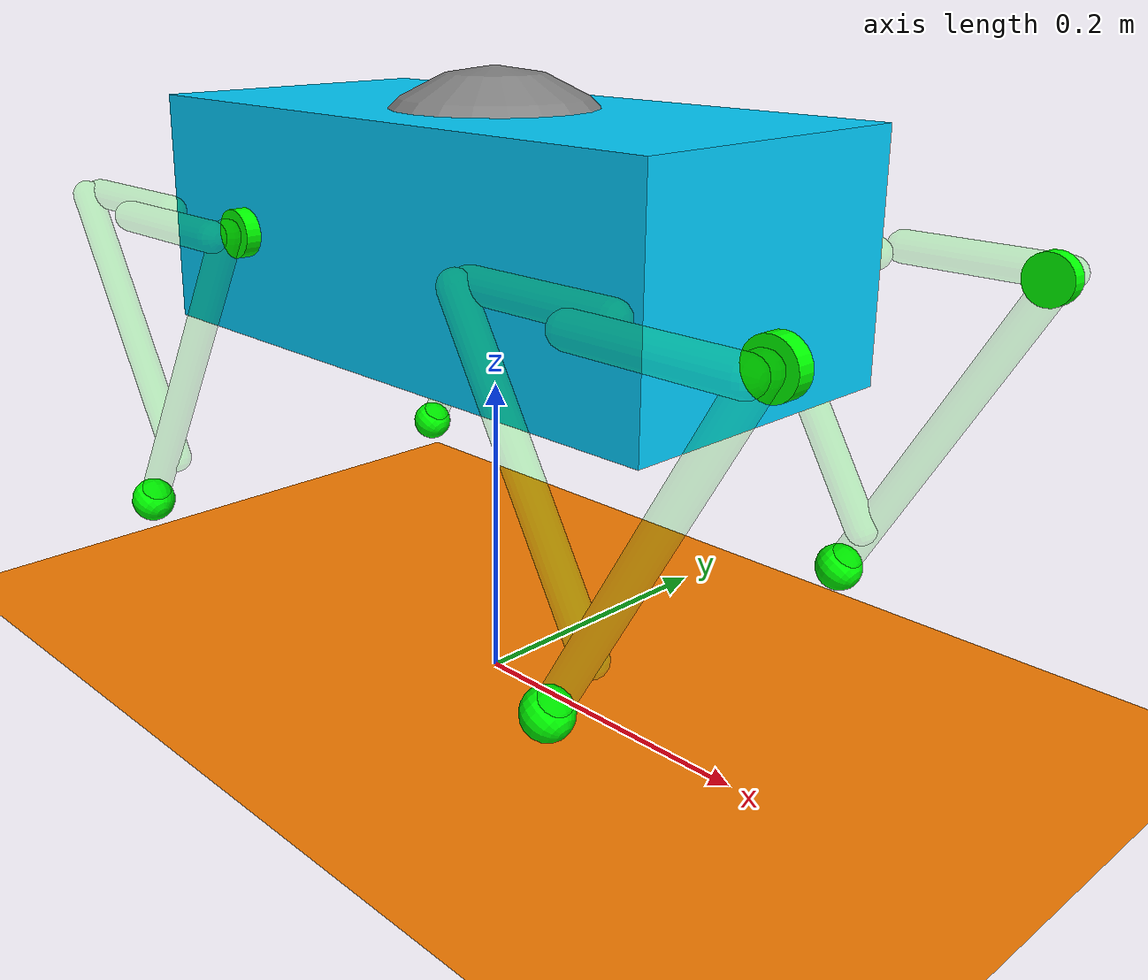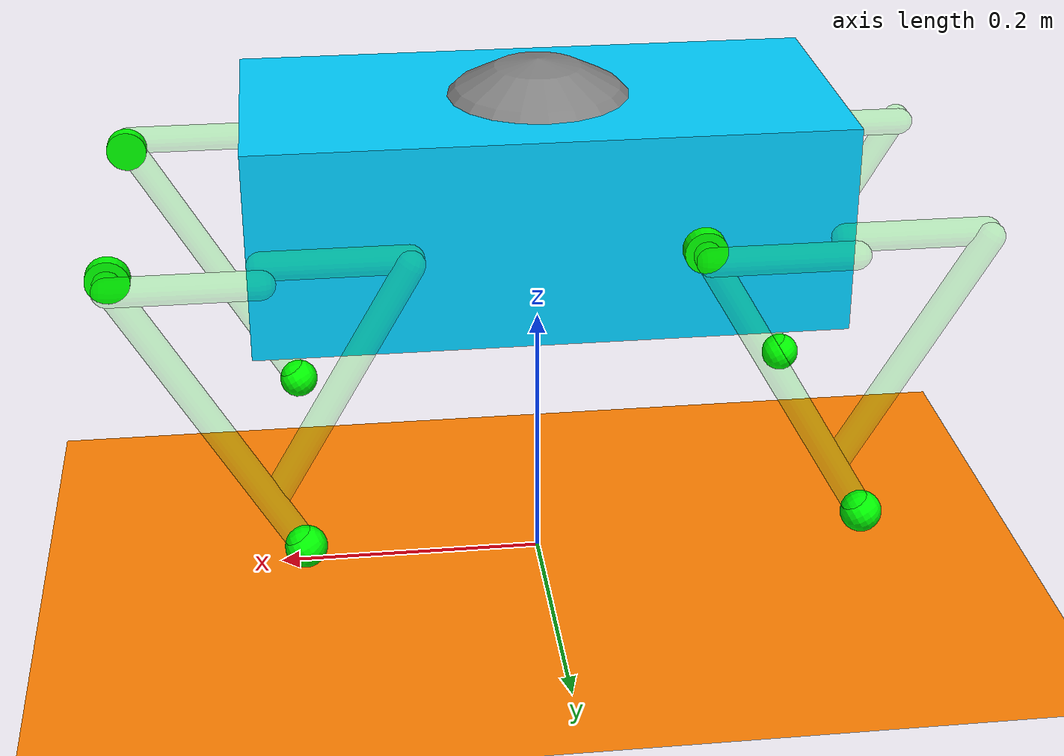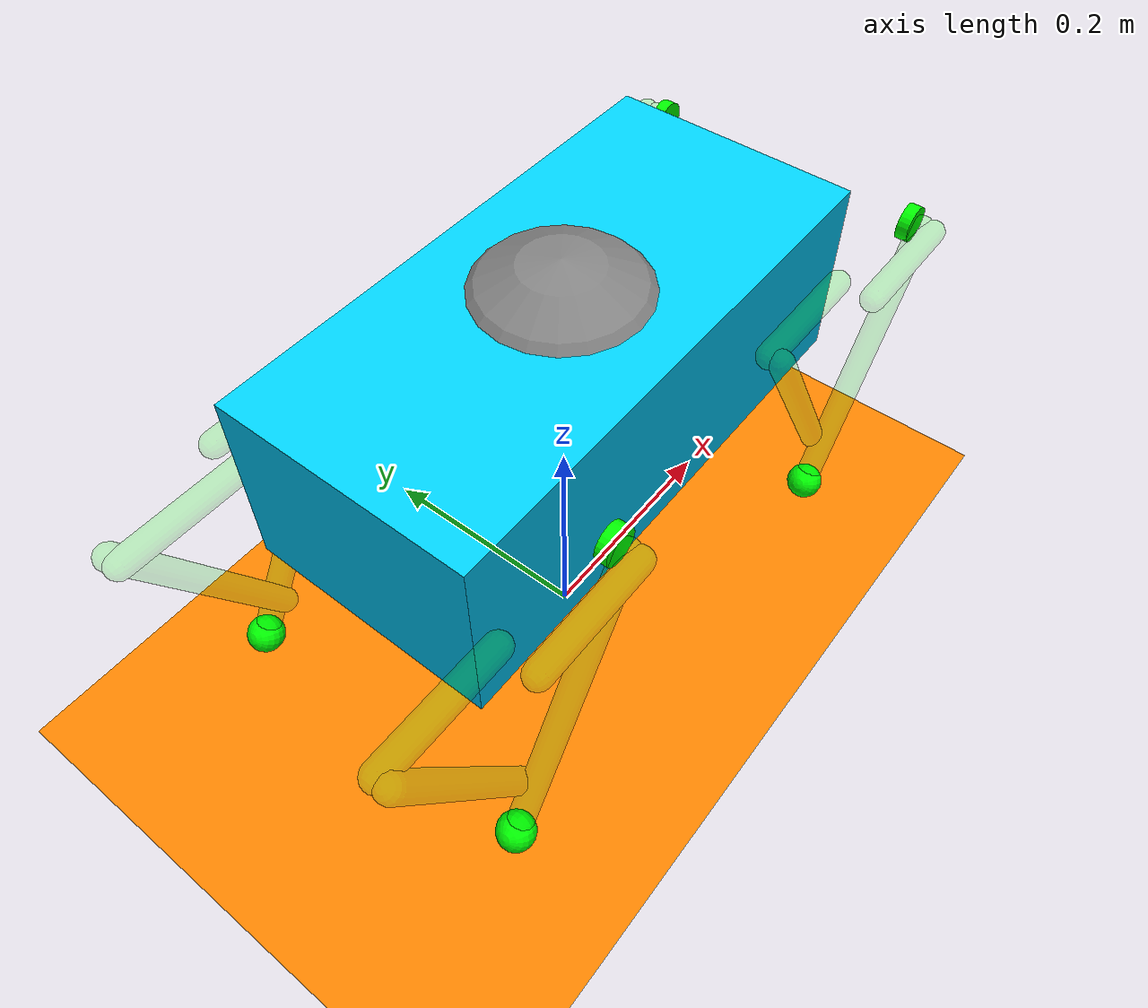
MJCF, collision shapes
<mujoco model='Minitaur'>
  <compiler inertiafromgeom='false' angle='degree' eulerseq='zyx' meshdir='../minitaur-stl'/>
  <size nuser_actuator='1' nuser_sensor='1'/>
  <option timestep='0.0005' iterations='50' solver='PGS' gravity='0 0 -9.806'/>
  <!-- Timestep is set to 0.0005 because our controller runs at 2 kHz (-9.806) -->
  <!-- Larger values still have stable dynamics -->
    <visual>
    <quality shadowsize='4096'/>
    <map znear='0.05'/>
    </visual>

    <default>
      <joint limited='true'/>
      <geom contype='0' conaffinity='0' condim='1' solref=".005 1" solimp=".8 .8 .01" material='collision'/>
      <equality solref='0.005 1'/>
      <motor ctrllimited='true'/>
      <mesh scale='0.001 0.001 0.001'/>

      <default class='mesh-import'>
          <geom type='mesh' euler='0 90 90' material='cassie'/>
      </default>
    </default>

    <asset>
        <texture type='skybox' builtin='gradient' width='128' height='128' rgb1='0.725490196078431   0.403921568627451   1.000000000000000' rgb2='1.000000000000000   0.984313725490196   0.588235294117647'/>
        <texture name='plane' type='2d' builtin='checker'  rgb1='1 0 0' rgb2='1 1 0' width='128' height='128'/>
        <material name='plane' reflectance='0.0' texture='plane' texrepeat='4 4' texuniform='true'/>
        <material name='cassie' rgba='0.003921568627451   0.803921568627451   0.996078431372549 1'/>
        <material name='collision' rgba='0 1 0 0.1'/>
        <mesh name='thigh' file='thigh.STL'/>
        <mesh name='foot' file='foot.STL'/>
        <mesh name='calf1' file='calf.STL'/>
        <mesh name='calf2' file='ankle.STL'/>
    </asset>

    <worldbody>
        <geom type='plane' size='100 100 100' material='plane' condim='3' contype='1' conaffinity='1'/>

        <body name='minitaur' pos='0 0 0.3'>
            <site name="bodyref" size="0.1"/>
            <camera mode="fixed" pos="1.3 -0.7 0.25" xyaxes = ".4 1 0 -.3 0 1"/>

            <inertial pos='0 0 0' mass='5.755' diaginertia='0.005 0.005 0.005'/>
            <geom type='box' size='0.21 0.1 0.075' material='cassie'/>

            <!--Forward/Backward motion -->
            <joint type='slide' limited='false' axis='1 0 0'/>

            <!-- Up/Down motion -->
            <joint type='slide' limited='false' axis='0 0 1' ref='0.3'/>

            <!-- Left/Right motion -->
            <joint type='slide' limited='false' axis='0 1 0'/>

            <!-- Pitch only -->
            <joint type='hinge' limited='false' axis='0 1 0'/>

            <!-- Roll only -->

            <!-- Rotation -->

            <!-- front left leg-->
            <body pos='0.2 0.14 0' euler='0 0 0'>
                <inertial pos='0 0 0' mass='0.0001' diaginertia='0.0000000001 0.0000000001 0.0000000001'/>

                    <body name='thigh_FL' euler='0 0 0' pos='0 0 0'>
                        <inertial pos='0.03848 0 0.00397' mass='0.03921' fullinertia='0.00000539488 0.00005606744 0.00006107051 0 0.00000009813 0'/>
                        <geom type='capsule' fromto='0 0 0 0.1 0 0' size='0.01'/>
                        <geom class='mesh-import' mesh='thigh' euler='180 90 90' pos = '0.1 0 0'/>
                        <joint name='thigh1FL_j' type='hinge' pos='0 0 0' axis='0 1 0' range='-180 180' ref='-90' armature='0.0001'/>

                        <body name='calf_long_FL' pos='0.1 -0.01 0' euler='0 120 0'>
                            <inertial pos='0.11635 0 0.00463' mass='0.05488' fullinertia='0.00000220501 0.00027791876 0.00027939897 0 0 0'/>
                            <geom type='capsule' fromto='0 0 0 0.24 0 0' size='0.01'/>
                            <geom type='cylinder' pos='0 -0.01 0' euler='0 0 90' size='0.015 0.005' condim='3' contype='3' conaffinity='2'/>
                            <geom class='mesh-import' mesh='calf2' euler='180 90 90'/>
                            <joint type='hinge' pos='0 0 0' axis='0 1 0' limited='false'/>

                            <body pos='0.24 0 0'>
                                <inertial pos='0 0 0' mass='0'/>
                                <geom type='sphere' size='0.015' contype='1' conaffinity='1'/>
                                <geom class='mesh-import' mesh='foot' euler='180 90 90' />
                                <site name='foot1' size='0.001'/>
                            </body>
                        </body>
                    </body>

                <body name='thigh2_FL' euler='0 180 0' pos='0 -0.03 0'>
                    <inertial pos='0.03848 0 0.00397' mass='0.03921' fullinertia='0.00000539488 0.00005606744 0.00006107051 0 0.00000009813 0'/>
                    <geom type='capsule' fromto='0 0 0 0.1 0 0' size='0.01'/>
                    <geom class='mesh-import' mesh='thigh' euler='180 90 90' pos = '0.1 0 0'/>
                    <joint name='thigh2FL_j' type='hinge' pos='0 0 0' axis='0 1 0' range='-180 180' ref='90' armature='0.0001'/>

                    <body name='calf_short_FL' euler='0 -120 0' pos='0.1 0.01 0'>
                        <inertial pos='0.10296 0 0.00448' mass='0.04710' fullinertia='0.00000203538 0.00019397672 0.00019542559 0 -0.00000006948 0'/>
                        <geom type='capsule' fromto='0 0 0 0.2 0 0' size='0.01' />
						            <joint type='hinge' pos='0 0 0' axis='0 1 0' limited='false' />
                        <geom class='mesh-import' mesh='calf1'/>
                    </body>
                </body>
            </body>

            <!-- front right leg-->
            <body pos='0.2 -0.14 0' euler='0 0 0'>
                <inertial pos='0 0 0' mass='0.0001' diaginertia='0.0000000001 0.0000000001 0.0000000001'/>

                    <body name='thigh_FR' euler='0 0 0' pos='0 0 0'>
                        <inertial pos='0.03848 0 0.00397' mass='0.03921' fullinertia='0.00000539488 0.00005606744 0.00006107051 0 0.00000009813 0'/>
                        <geom type='capsule' fromto='0 0 0 0.1 0 0' size='0.01'/>
                        <geom class='mesh-import' mesh='thigh' euler='180 90 90' pos = '0.1 0 0'/>
                        <joint name='thigh1FR_j' type='hinge' pos='0 0 0' axis='0 1 0' range='-180 180' ref='-90' armature='0.0001'/>

                        <body name='calf_long_FR' pos='0.1 0.01 0' euler='0 120 0'>
                            <inertial pos='0.11635 0 0.00463' mass='0.05488' fullinertia='0.00000220501 0.00027791876 0.00027939897 0 0 0'/>
                            <geom type='capsule' fromto='0 0 0 0.24 0 0' size='0.01'/>
                            <geom type='cylinder' pos='0 0.01 0' euler='0 0 90' size='0.015 0.005' condim='3' contype='3' conaffinity='2'/>
                            <geom class='mesh-import' mesh='calf2' euler='180 90 90'/>
                            <joint type='hinge' pos='0 0 0' axis='0 1 0' limited='false'/>

                            <body pos='0.24 0 0'>
                                <inertial pos='0 0 0' mass='0'/>
                                <geom type='sphere' size='0.015' contype='1' conaffinity='1'/>
                                <geom class='mesh-import' mesh='foot' euler='180 90 90' />
                                <site name='foot2' size='0.001'/>
                            </body>
                        </body>
                    </body>

                <body name='thigh2_FR' euler='0 180 0' pos='0 0.03 0'>
                    <inertial pos='0.03848 0 0.00397' mass='0.03921' fullinertia='0.00000539488 0.00005606744 0.00006107051 0 0.00000009813 0'/>
                    <geom type='capsule' fromto='0 0 0 0.1 0 0' size='0.01'/>
                    <geom class='mesh-import' mesh='thigh' euler='180 90 90' pos = '0.1 0 0'/>
                    <joint name='thigh2FR_j' type='hinge' pos='0 0 0' axis='0 1 0' range='-180 180' ref='90' armature='0.0001'/>

                    <body name='calf_short_FR' euler='0 -120 0' pos='0.1 -0.01 0'>
                        <inertial pos='0.10296 0 0.00448' mass='0.04710' fullinertia='0.00000203538 0.00019397672 0.00019542559 0 -0.00000006948 0'/>
                        <geom type='capsule' fromto='0 0 0 0.2 0 0' size='0.01' />
						            <joint type='hinge' pos='0 0 0' axis='0 1 0' limited='false'/>
                        <geom class='mesh-import' mesh='calf1'/>
                    </body>
                </body>
            </body>

            <!-- beck left leg-->
            <body pos='-0.2 0.14 0' euler='0 0 0'>
                <inertial pos='0 0 0' mass='0.0001' diaginertia='0.0000000001 0.0000000001 0.0000000001'/>

                    <body name='thigh_BL' euler='0 0 0' pos='0 0 0'>
                        <inertial pos='0.03848 0 0.00397' mass='0.03921' fullinertia='0.00000539488 0.00005606744 0.00006107051 0 0.00000009813 0'/>
                        <geom type='capsule' fromto='0 0 0 0.1 0 0' size='0.01'/>
                        <geom class='mesh-import' mesh='thigh' euler='180 90 90' pos = '0.1 0 0'/>
                        <joint name='thigh1BL_j' type='hinge' pos='0 0 0' axis='0 1 0' range='-180 180' ref='-90' armature='0.0001'/>

                        <body name='calf_long_BL' pos='0.1 -0.01 0' euler='0 120 0'>
                            <inertial pos='0.11635 0 0.00463' mass='0.05488' fullinertia='0.00000220501 0.00027791876 0.00027939897 0 0 0'/>
                            <geom type='capsule' fromto='0 0 0 0.24 0 0' size='0.01'/>
                            <geom type='cylinder' pos='0 -0.01 0' euler='0 0 90' size='0.015 0.005' condim='3' contype='3' conaffinity='2'/>
                            <geom class='mesh-import' mesh='calf2' euler='180 90 90'/>
                            <joint type='hinge' pos='0 0 0' axis='0 1 0' limited='false'/>

                            <body pos='0.24 0 0'>
                                <inertial pos='0 0 0' mass='0'/>
                                <geom type='sphere' size='0.015' contype='1' conaffinity='1'/>
                                <geom class='mesh-import' mesh='foot' euler='180 90 90' />
                                <site name='foot3' size='0.001'/>
                            </body>
                        </body>
                    </body>

                <body name='thigh2_BL' euler='0 180 0' pos='0 -0.03 0'>
                    <inertial pos='0.03848 0 0.00397' mass='0.03921' fullinertia='0.00000539488 0.00005606744 0.00006107051 0 0.00000009813 0'/>
                    <geom type='capsule' fromto='0 0 0 0.1 0 0' size='0.01'/>
                    <geom class='mesh-import' mesh='thigh' euler='180 90 90' pos = '0.1 0 0'/>
                    <joint name='thigh2BL_j' type='hinge' pos='0 0 0' axis='0 1 0' range='-180 180' ref='90' armature='0.0001'/>

                    <body name='calf_short_BL' euler='0 -120 0' pos='0.1 0.01 0'>
                        <inertial pos='0.10296 0 0.00448' mass='0.04710' fullinertia='0.00000203538 0.00019397672 0.00019542559 0 -0.00000006948 0'/>
                        <geom type='capsule' fromto='0 0 0 0.2 0 0' size='0.01' />
						            <joint type='hinge' pos='0 0 0' axis='0 1 0' limited='false'/>
                        <geom class='mesh-import' mesh='calf1'/>
                    </body>
                </body>
            </body>

            <!-- beck right leg-->
            <body pos='-0.2 -0.14 0' euler='0 0 0'>
                <inertial pos='0 0 0' mass='0.0001' diaginertia='0.0000000001 0.0000000001 0.0000000001'/>

                    <body name='thigh_BR' euler='0 0 0' pos='0 0 0'>
                        <inertial pos='0.03848 0 0.00397' mass='0.03921' fullinertia='0.00000539488 0.00005606744 0.00006107051 0 0.00000009813 0'/>
                        <geom type='capsule' fromto='0 0 0 0.1 0 0' size='0.01'/>
                        <geom class='mesh-import' mesh='thigh' euler='180 90 90' pos = '0.1 0 0'/>
                        <joint name='thigh1BR_j' type='hinge' pos='0 0 0' axis='0 1 0' range='-180 180' ref='-90' armature='0.0001'/>

                        <body name='calf_long_BR' pos='0.1 0.01 0' euler='0 120 0'>
                            <inertial pos='0.11635 0 0.00463' mass='0.05488' fullinertia='0.00000220501 0.00027791876 0.00027939897 0 0 0'/>
                            <geom type='capsule' fromto='0 0 0 0.24 0 0' size='0.01'/>
                            <geom type='cylinder' pos='0 0.01 0' euler='0 0 90' size='0.015 0.005' condim='3' contype='3' conaffinity='2'/>
                            <geom class='mesh-import' mesh='calf2' euler='180 90 90'/>
                            <joint type='hinge' pos='0 0 0' axis='0 1 0' limited='false'/>

                            <body pos='0.24 0 0'>
                                <inertial pos='0 0 0' mass='0'/>
                                <geom type='sphere' size='0.015' contype='1' conaffinity='1'/>
                                <geom class='mesh-import' mesh='foot' euler='180 90 90' />
                                <site name='foot4' size='0.001'/>
                            </body>
                        </body>
                    </body>

                <body name='thigh2_BR' euler='0 180 0' pos='0 0.03 0'>
                    <inertial pos='0.03848 0 0.00397' mass='0.03921' fullinertia='0.00000539488 0.00005606744 0.00006107051 0 0.00000009813 0'/>
                    <geom type='capsule' fromto='0 0 0 0.1 0 0' size='0.01'/>
                    <geom class='mesh-import' mesh='thigh' euler='180 90 90' pos = '0.1 0 0'/>
                    <joint name='thigh2BR_j' type='hinge' pos='0 0 0' axis='0 1 0' range='-180 180' ref='90' armature='0.0001'/>

                    <body name='calf_short_BR' euler='0 -120 0' pos='0.1 -0.01 0'>
                        <inertial pos='0.10296 0 0.00448' mass='0.04710' fullinertia='0.00000203538 0.00019397672 0.00019542559 0 -0.00000006948 0'/>
                        <geom type='capsule' fromto='0 0 0 0.2 0 0' size='0.01' />
						            <joint type='hinge' pos='0 0 0' axis='0 1 0' limited='false'/>
                        <geom class='mesh-import' mesh='calf1'/>
                    </body>
                </body>
            </body>
        </body>
    </worldbody>

    <equality>
        <connect body1='calf_short_FL' body2='calf_long_FL' anchor='0.2 0 0' solref=".005 1"/>
        <connect body1='calf_short_FR' body2='calf_long_FR' anchor='0.2 0 0' solref=".005 1"/>
        <connect body1='calf_short_BL' body2='calf_long_BL' anchor='0.2 0 0' solref=".005 1"/>
        <connect body1='calf_short_BR' body2='calf_long_BR' anchor='0.2 0 0' solref=".005 1"/>
    </equality>

    <actuator>
        <motor name='thigh1FL_a' joint='thigh1FL_j' gear='1' ctrllimited='true' ctrlrange='-10 10'/>
        <motor name='thigh2FL_a' joint='thigh2FL_j' gear='1' ctrllimited='true' ctrlrange='-10 10'/>

        <motor name='thigh1FR_a' joint='thigh1FR_j' gear='1' ctrllimited='true' ctrlrange='-10 10'/>
        <motor name='thigh2FR_a' joint='thigh2FR_j' gear='1' ctrllimited='true' ctrlrange='-10 10'/>

        <motor name='thigh1BL_a' joint='thigh1BL_j' gear='1' ctrllimited='true' ctrlrange='-10 10'/>
        <motor name='thigh2BL_a' joint='thigh2BL_j' gear='1' ctrllimited='true' ctrlrange='-10 10'/>

        <motor name='thigh1BR_a' joint='thigh1BR_j' gear='1' ctrllimited='true' ctrlrange='-10 10'/>
        <motor name='thigh2BR_a' joint='thigh2BR_j' gear='1' ctrllimited='true' ctrlrange='-10 10'/>
    </actuator>

    <sensor>
        <gyro name="body_gyro" site="bodyref" />
        <accelerometer name="body_accel" site="bodyref" />
        <framepos name="body_pos" objtype="xbody" objname="minitaur" />
        <jointpos name='thigh1FL_spos' joint='thigh1FL_j'/>
        <jointpos name='thigh2FL_spos' joint='thigh2FL_j'/>

        <jointpos name='thigh1FR_spos' joint='thigh1FR_j'/>
        <jointpos name='thigh2FR_spos' joint='thigh2FR_j'/>

        <jointpos name='thigh1BL_spos' joint='thigh1BL_j'/>
        <jointpos name='thigh2BL_spos' joint='thigh2BL_j'/>

        <jointpos name='thigh1BR_spos' joint='thigh1BR_j'/>
        <jointpos name='thigh2BR_spos' joint='thigh2BR_j'/>

        <jointvel name='thigh1FL_svel' joint='thigh1FL_j'/>
        <jointvel name='thigh2FL_svel' joint='thigh2FL_j'/>

        <jointvel name='thigh1FR_svel' joint='thigh1FR_j'/>
        <jointvel name='thigh2FR_svel' joint='thigh2FR_j'/>

        <jointvel name='thigh1BL_svel' joint='thigh1BL_j'/>
        <jointvel name='thigh2BL_svel' joint='thigh2BL_j'/>

        <jointvel name='thigh1BR_svel' joint='thigh1BR_j'/>
        <jointvel name='thigh2BR_svel' joint='thigh2BR_j'/>
    </sensor>

</mujoco>
